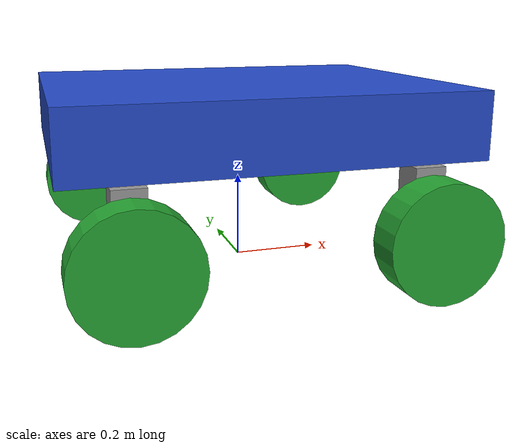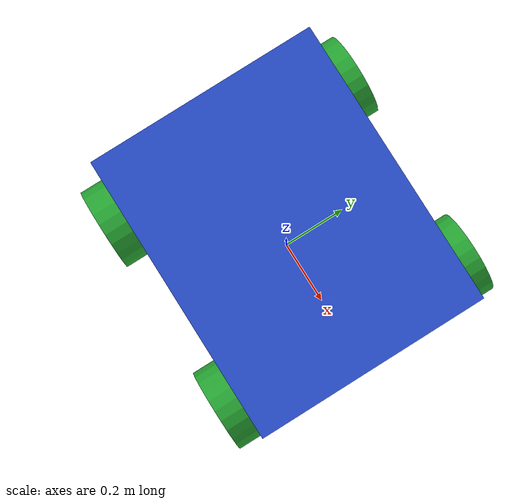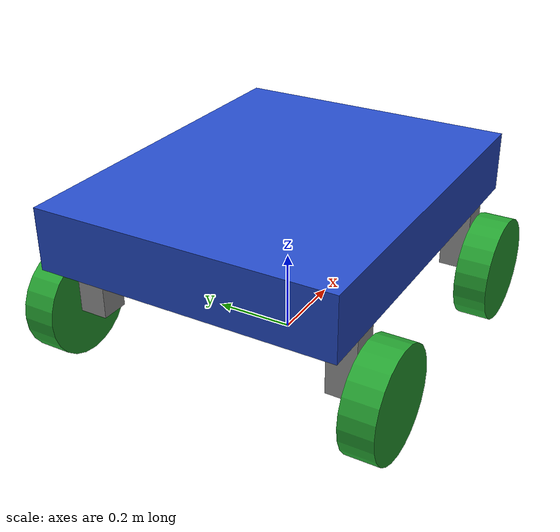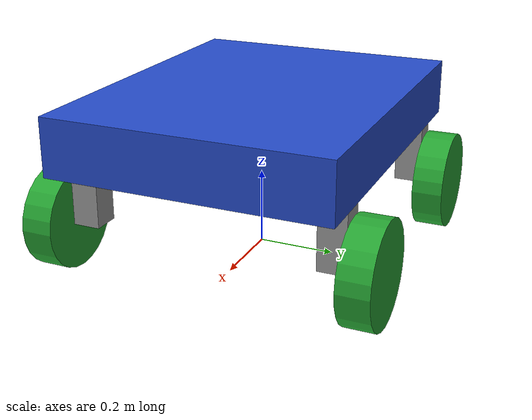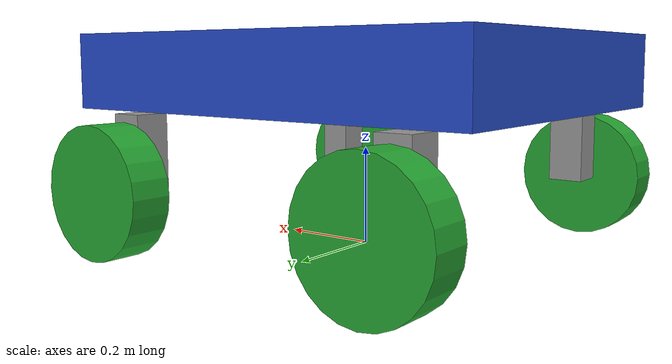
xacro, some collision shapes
<?xml version="1.0"?>
<robot xmlns:xacro="http://www.ros.org/wiki/xacro" name="lawn_mower_robot">

  <!-- Simulation or Physical Robot -->
  <xacro:arg name="sim_gazebo_classic" default="false"/>

  <!-- Import fws core -->
  <xacro:include filename="$(find fwsbot)/urdf/fwsbot.core.xacro" />

  <!-- Import fwsbot ros2_control -->
  <xacro:include filename="$(find fwsbot)/ros2_control/fwsbot.ros2_control.xacro" />

</robot>

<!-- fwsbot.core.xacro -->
<robot xmlns:xacro="http://ros.org/wiki/xacro">
  <!-- ============= Materials & Intertias =============  -->
  <xacro:include filename="$(find fwsbot)/urdf/inertial_macros.xacro"/>
  <xacro:include filename="$(find fwsbot)/urdf/materials.xacro"/>

  <!-- =============== Links & Joints =============== -->
  <!-- Base  footprint-->
  <link name="base_footprint"/>

  <!-- Base Link -->
  <joint name="base_link_joint" type="fixed">
    <origin xyz="0 0 0.2"/>
    <parent link="base_footprint"/>
    <child link="base_link"/>
  </joint>

  <link name="base_link"/>

  <!-- Chassis Link  -->
  <joint name="chassis_joint" type="fixed">
    <parent link="base_link"/>
    <child link="chassis"/>
    <origin xyz="0.0 0.0 0.157" rpy="0.0 0.0 0.0"/>
  </joint>

  <link name="chassis">
    <visual>
      <origin xyz="0.46 -0.41 -0.20" rpy="0 0 ${pi/2}"/>
      <geometry>
        <mesh filename="package://fwsbot/meshes/base_link.stl" scale="0.001 0.001 0.001" />
      </geometry>
      <material name="blue"/>
    </visual>
    <collision>
      <geometry>
        <box size="0.90 0.72 0.15"/>
      </geometry>
    </collision>
    <xacro:inertial_box mass="1.0" x="0.90" y="0.72" z="0.15">
      <origin xyz="0 0 0" rpy="0 0 0"/>
    </xacro:inertial_box>
  </link>

  <!-- Front Right Steering Link -->
  <joint name="fr_steering_joint" type="revolute">
    <origin xyz="0.315 -0.32 0.0"/>
    <parent link="base_link"/>
    <child link="fr_steering_link"/>
    <limit effort="5" lower="-2.1" upper="2.1" velocity="6.28"/>
    <axis xyz="0 0 1"/>
  </joint>

  <link name="fr_steering_link">
    <visual>
      <origin xyz="0.0 0.0 0.0" rpy="0.0 0.0 0.0"/>
      <geometry>
        <box size="0.07 0.07 0.15"/>
      </geometry>
      <material name="grey"/>
    </visual>
    <collision>
      <geometry>
        <box size="0.07 0.07 0.15"/>
      </geometry>
    </collision>
    <xacro:inertial_box mass="0.05" x="0.07" y="0.07" z="0.15">
      <origin xyz="0 0 0" rpy="0 0 0"/>
    </xacro:inertial_box>
  </link>

  <!-- Front Left Steering Link -->
  <joint name="fl_steering_joint" type="revolute">
    <origin xyz="0.315 0.32 0.0"/>
    <parent link="base_link"/>
    <child link="fl_steering_link"/>
    <limit effort="5" lower="-2.1" upper="2.1" velocity="6.28"/>
    <axis xyz="0 0 1"/>
  </joint>

  <link name="fl_steering_link">
    <visual>
      <origin xyz="0.0 0.0 0.0" rpy="0.0 0.0 0.0"/>
      <geometry>
        <box size="0.07 0.07 0.15"/>
      </geometry>
      <material name="grey"/>
    </visual>
    <collision>
      <geometry>
        <box size="0.07 0.07 0.15"/>
      </geometry>
    </collision>
    <xacro:inertial_box mass="0.05" x="0.07" y="0.07" z="0.15">
      <origin xyz="0 0 0" rpy="0 0 0"/>
    </xacro:inertial_box>

  </link>

  <!-- Rear Right Steering Link -->
  <joint name="rr_steering_joint" type="revolute">
    <origin xyz="-0.315 -0.32 0.0"/>
    <parent link="base_link"/>
    <child link="rr_steering_link"/>
    <limit effort="5" lower="-2.1" upper="2.1" velocity="6.28"/>
    <axis xyz="0 0 1"/>
  </joint>

  <link name="rr_steering_link">
    <visual>
      <origin xyz="0.0 0.0 0.0" rpy="0.0 0.0 0.0"/>
      <geometry>
        <box size="0.07 0.07 0.15"/>
      </geometry>
      <material name="grey"/>
    </visual>
    <collision>
      <geometry>
        <box size="0.07 0.07 0.15"/>
      </geometry>
    </collision>
    <xacro:inertial_box mass="0.05" x="0.07" y="0.07" z="0.15">
      <origin xyz="0 0 0" rpy="0 0 0"/>
    </xacro:inertial_box>

  </link>

  <!-- Rear Left Steering Link -->
  <joint name="rl_steering_joint" type="revolute">
    <origin xyz="-0.315 0.32 0.0"/>
    <parent link="base_link"/>
    <child link="rl_steering_link"/>
    <limit effort="5" lower="-2.1" upper="2.1" velocity="6.28"/>
    <axis xyz="0 0 1"/>
  </joint>

  <link name="rl_steering_link">
    <visual>
      <origin xyz="0.0 0.0 0.0" rpy="0.0 0.0 0.0"/>
      <geometry>
        <box size="0.07 0.07 0.15"/>
      </geometry>
      <material name="grey"/>
    </visual>
    <collision>
      <geometry>
        <box size="0.07 0.07 0.15"/>
      </geometry>
    </collision>
    <xacro:inertial_box mass="0.05" x="0.07" y="0.07" z="0.15">
      <origin xyz="0 0 0" rpy="0 0 0"/>
    </xacro:inertial_box>

  </link>

  <!-- Front Right Wheel Link -->
  <joint name="fr_wheel_joint" type="continuous">
    <origin xyz="0 -0.08 -0.07" rpy="${pi/2} 0 0"/>
    <parent link="fr_steering_link"/>
    <child link="fr_wheel_link"/>
    <axis xyz="0 0 1"/>
  </joint>

  <link name="fr_wheel_link">
    <visual>
      <origin xyz="0.0 0.0 0.0" rpy="0.0 0.0 0.0"/>
      <geometry>
        <cylinder radius="0.13" length="0.08"/>
      </geometry>
      <material name="green"/>
    </visual>
    <collision>
      <origin xyz="0.0 0.0 0.0" rpy="0.0 0.0 0.0"/>
      <geometry>
        <cylinder radius="0.13" length="0.08"/>
      </geometry>
    </collision>
    <xacro:inertial_cylinder mass="0.1" length="0.08" radius="0.13">
      <origin xyz="0 0 0" rpy="0 0 0"/>
    </xacro:inertial_cylinder>
  </link>

  <!-- Front Left Wheel Link -->
  <joint name="fl_wheel_joint" type="continuous">
    <origin xyz="0 0.08 -0.07" rpy="-${pi/2} 0 0"/>
    <parent link="fl_steering_link"/>
    <child link="fl_wheel_link"/>
    <axis xyz="0 0 -1"/>
  </joint>

  <link name="fl_wheel_link">
    <visual>
      <origin xyz="0.0 0.0 0.0" rpy="0.0 0.0 0.0"/>
      <geometry>
        <cylinder radius="0.13" length="0.08"/>
      </geometry>
      <material name="green"/>
    </visual>
    <collision>
      <origin xyz="0.0 0.0 0.0" rpy="0.0 0.0 0.0"/>
      <geometry>
        <cylinder radius="0.13" length="0.08"/>
      </geometry>
    </collision>
    <xacro:inertial_cylinder mass="0.1" length="0.08" radius="0.13">
      <origin xyz="0 0 0" rpy="0 0 0"/>
    </xacro:inertial_cylinder>

  </link>

  <!-- Rear Right Wheel Link -->
  <joint name="rr_wheel_joint" type="continuous">
    <origin xyz="0 -0.08 -0.07" rpy="${pi/2} 0 0"/>
    <parent link="rr_steering_link"/>
    <child link="rr_wheel_link"/>
    <axis xyz="0 0 1"/>
  </joint>

  <link name="rr_wheel_link">
    <visual>
      <origin xyz="0.0 0.0 0.0" rpy="0.0 0.0 0.0"/>
      <geometry>
        <cylinder radius="0.13" length="0.08"/>
      </geometry>
      <material name="green"/>
    </visual>
    <collision>
      <origin xyz="0.0 0.0 0.0" rpy="0.0 0.0 0.0"/>
      <geometry>
        <cylinder radius="0.13" length="0.08"/>
      </geometry>
    </collision>
    <xacro:inertial_cylinder mass="0.1" length="0.08" radius="0.13">
      <origin xyz="0 0 0" rpy="0 0 0"/>
    </xacro:inertial_cylinder>
  </link>

  <!-- Rear Left Wheel Link -->
  <joint name="rl_wheel_joint" type="continuous">
    <origin xyz="0 0.08 -0.07" rpy="-${pi/2} 0 0"/>
    <parent link="rl_steering_link"/>
    <child link="rl_wheel_link"/>
    <axis xyz="0 0 -1"/>
  </joint>

  <link name="rl_wheel_link">
    <visual>
      <origin xyz="0.0 0.0 0.0" rpy="0.0 0.0 0.0"/>
      <geometry>
        <cylinder radius="0.13" length="0.08"/>
      </geometry>
      <material name="green"/>
    </visual>
    <collision>
      <origin xyz="0.0 0.0 0.0" rpy="0.0 0.0 0.0"/>
      <geometry>
        <cylinder radius="0.13" length="0.08"/>
      </geometry>
    </collision>
    <xacro:inertial_cylinder mass="0.1" length="0.08" radius="0.13">
      <origin xyz="0 0 0" rpy="0 0 0"/>
    </xacro:inertial_cylinder>

  </link>

</robot>
